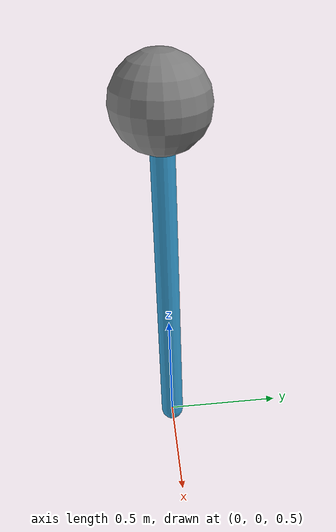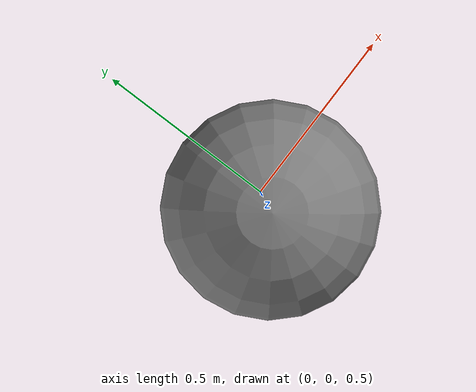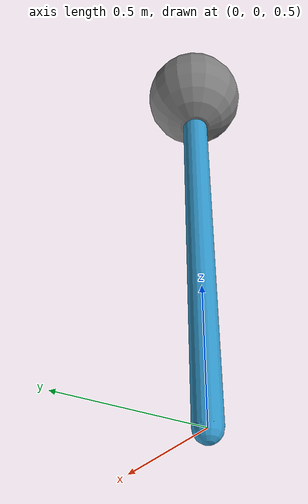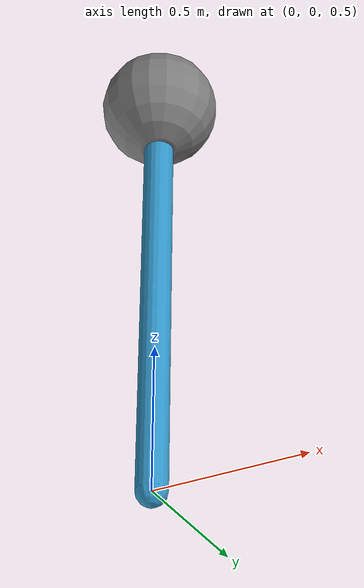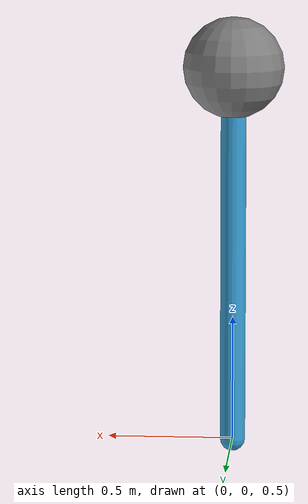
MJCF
<mujoco>
  <option gravity="0 0 -9.81"/>
  <worldbody>
    <!-- Compound Pendulum -->
    <body name="object_1" pos="0 0 2">
      <geom type="capsule" fromto="0 0 0 0 0 -1.5" size="0.05" rgba="0.2 0.6 0.8 1"/>
      <joint name="object_1_joint" type="hinge" axis="0 1 0"/>
    </body>
    <!-- Fixed Support -->
    <body name="object_2" pos="0 0 2">
      <geom type="sphere" size="0.2" rgba="0.5 0.5 0.5 1"/>
    </body>
    <!-- Ground Surface -->
    <body name="object_3" pos="-10 0 -10">
      <geom type="plane" size="25 25 0.1" rgba="0.7 0.7 0.7 1" friction="1 1 1"/>
    </body>
  </worldbody>
</mujoco>
